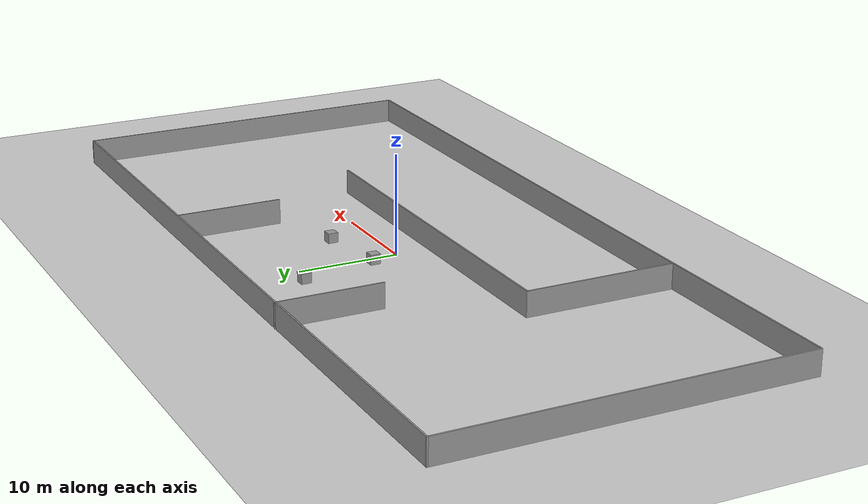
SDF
<sdf version="1.7">
 <world name="default">
  <light name="sun" type="directional">
   <pose>0 0 10 0 -0 0</pose>
   <diffuse>0.8 0.8 0.8 1</diffuse>
   <specular>0.2 0.2 0.2 1</specular>
   <attenuation>
    <range>1000</range>
    <constant>0.9</constant>
    <linear>0.01</linear>
    <quadratic>0.001</quadratic>
   </attenuation>
   <direction>-0.5 0.1 -0.9</direction>
   <spot><inner_angle>0</inner_angle><outer_angle>0</outer_angle><falloff>0</falloff></spot>
  </light>
  <model name="ground_plane">
   <static>1</static>
   <link name="link">
    <collision name="collision">
     <geometry><plane><normal>0 0 1</normal><size>100 100</size></plane></geometry>
     <surface>
      <contact><collide_bitmask>65535</collide_bitmask></contact>
      <friction><ode><mu>100</mu><mu2>50</mu2></ode></friction>
     </surface>
    </collision>
    <visual name="visual">
     <cast_shadows>0</cast_shadows>
     <geometry><plane><normal>0 0 1</normal><size>100 100</size></plane></geometry>
     <material>
      <script><uri>file://media/materials/scripts/gazebo.material</uri><name>Gazebo/Grey</name></script>
     </material>
    </visual>
   </link>
  </model>
  <gravity>0 0 -9.8</gravity>
  <magnetic_field>6e-06 2.3e-05 -4.2e-05</magnetic_field>
  <atmosphere type="adiabatic"/>
  <physics type="ode">
   <max_step_size>0.001</max_step_size>
   <real_time_factor>1</real_time_factor>
   <real_time_update_rate>1000</real_time_update_rate>
  </physics>
  <scene><ambient>0.4 0.4 0.4 1</ambient><background>0.7 0.7 0.7 1</background><shadows>1</shadows></scene>
  <spherical_coordinates>
   <surface_model>EARTH_WGS84</surface_model>
   <latitude_deg>0</latitude_deg>
   <longitude_deg>0</longitude_deg>
   <elevation>0</elevation>
   <heading_deg>0</heading_deg>
  </spherical_coordinates>
  <model name="room2">
   <pose>0.05988 -0.741475 0 0 -0 0</pose>
   <link name="Wall_0">
    <collision name="Wall_0_Collision">
     <geometry><box><size>35.75 0.15 2.5</size></box></geometry>
     <pose>0 0 1.25 0 -0 0</pose>
    </collision>
    <visual name="Wall_0_Visual">
     <pose>0 0 1.25 0 -0 0</pose>
     <geometry><box><size>35.75 0.15 2.5</size></box></geometry>
     <material>
      <script><uri>file://media/materials/scripts/gazebo.material</uri><name>Gazebo/Grey</name></script>
      <ambient>1 1 1 1</ambient>
     </material>
     <meta><layer>0</layer></meta>
    </visual>
    <pose>-39.8 -0.046787 0 0 -0 -1.5708</pose>
   </link>
   <link name="Wall_1">
    <collision name="Wall_1_Collision">
     <geometry><box><size>21.25 0.15 2.5</size></box></geometry>
     <pose>0 0 1.25 0 -0 0</pose>
    </collision>
    <visual name="Wall_1_Visual">
     <pose>0 0 1.25 0 -0 0</pose>
     <geometry><box><size>21.25 0.15 2.5</size></box></geometry>
     <material>
      <script><uri>file://media/materials/scripts/gazebo.material</uri><name>Gazebo/Grey</name></script>
      <ambient>1 1 1 1</ambient>
     </material>
     <meta><layer>0</layer></meta>
    </visual>
    <pose>-29.25 -17.8468 0 0 -0 0</pose>
   </link>
   <link name="Wall_11">
    <collision name="Wall_11_Collision">
     <geometry><box><size>10.5 0.15 2.5</size></box></geometry>
     <pose>0 0 1.25 0 -0 0</pose>
    </collision>
    <visual name="Wall_11_Visual">
     <pose>0 0 1.25 0 -0 0</pose>
     <geometry><box><size>10.5 0.15 2.5</size></box></geometry>
     <material>
      <script><uri>file://media/materials/scripts/gazebo.material</uri><name>Gazebo/Grey</name></script>
      <ambient>1 1 1 1</ambient>
     </material>
     <meta><layer>0</layer></meta>
    </visual>
    <pose>13.0706 12.3911 0 0 -0 -1.5708</pose>
   </link>
   <link name="Wall_2">
    <collision name="Wall_2_Collision">
     <geometry><box><size>15.25 0.15 2.5</size></box></geometry>
     <pose>0 0 1.25 0 -0 0</pose>
    </collision>
    <visual name="Wall_2_Visual">
     <pose>0 0 1.25 0 -0 0</pose>
     <geometry><box><size>15.25 0.15 2.5</size></box></geometry>
     <material>
      <script><uri>file://media/materials/scripts/gazebo.material</uri><name>Gazebo/Grey</name></script>
      <ambient>1 1 1 1</ambient>
     </material>
     <meta><layer>0</layer></meta>
    </visual>
    <pose>-18.7 -10.2968 0 0 -0 1.5708</pose>
   </link>
   <link name="Wall_3">
    <collision name="Wall_3_Collision">
     <geometry><box><size>37.25 0.15 2.5</size></box></geometry>
     <pose>0 0 1.25 0 -0 0</pose>
    </collision>
    <visual name="Wall_3_Visual">
     <pose>0 0 1.25 0 -0 0</pose>
     <geometry><box><size>37.25 0.15 2.5</size></box></geometry>
     <material>
      <script><uri>file://media/materials/scripts/gazebo.material</uri><name>Gazebo/Grey</name></script>
      <ambient>1 1 1 1</ambient>
     </material>
     <meta><layer>0</layer></meta>
    </visual>
    <pose>-0.15 -2.74679 0 0 -0 0</pose>
   </link>
   <link name="Wall_5">
    <collision name="Wall_5_Collision">
     <geometry><box><size>79.75 0.15 2.5</size></box></geometry>
     <pose>0 0 1.25 0 -0 0</pose>
    </collision>
    <visual name="Wall_5_Visual">
     <pose>0 0 1.25 0 -0 0</pose>
     <geometry><box><size>79.75 0.15 2.5</size></box></geometry>
     <material>
      <script><uri>file://media/materials/scripts/gazebo.material</uri><name>Gazebo/Grey</name></script>
      <ambient>1 1 1 1</ambient>
     </material>
     <meta><layer>0</layer></meta>
    </visual>
    <pose>0 17.7532 0 0 -0 0</pose>
   </link>
   <link name="Wall_6">
    <collision name="Wall_6_Collision">
     <geometry><box><size>35.75 0.15 2.5</size></box></geometry>
     <pose>0 0 1.25 0 -0 0</pose>
    </collision>
    <visual name="Wall_6_Visual">
     <pose>0 0 1.25 0 -0 0</pose>
     <geometry><box><size>35.75 0.15 2.5</size></box></geometry>
     <material>
      <script><uri>file://media/materials/scripts/gazebo.material</uri><name>Gazebo/Grey</name></script>
      <ambient>1 1 1 1</ambient>
     </material>
     <meta><layer>0</layer></meta>
    </visual>
    <pose>39.8 -0.046787 0 0 -0 -1.5708</pose>
   </link>
   <link name="Wall_7">
    <collision name="Wall_7_Collision">
     <geometry><box><size>58.65 0.15 2.5</size></box></geometry>
     <pose>0 0 1.25 0 -0 0</pose>
    </collision>
    <visual name="Wall_7_Visual">
     <pose>0 0 1.25 0 -0 0</pose>
     <geometry><box><size>58.65 0.15 2.5</size></box></geometry>
     <material>
      <script><uri>file://media/materials/scripts/gazebo.material</uri><name>Gazebo/Grey</name></script>
      <ambient>1 1 1 1</ambient>
     </material>
     <meta><layer>0</layer></meta>
    </visual>
    <pose>10.55 -17.8468 0 0 -0 3.14159</pose>
   </link>
   <link name="Wall_9">
    <collision name="Wall_9_Collision">
     <geometry><box><size>10.5 0.15 2.5</size></box></geometry>
     <pose>0 0 1.25 0 -0 0</pose>
    </collision>
    <visual name="Wall_9_Visual">
     <pose>0 0 1.25 0 -0 0</pose>
     <geometry><box><size>10.5 0.15 2.5</size></box></geometry>
     <material>
      <script><uri>file://media/materials/scripts/gazebo.material</uri><name>Gazebo/Grey</name></script>
      <ambient>1 1 1 1</ambient>
     </material>
     <meta><layer>0</layer></meta>
    </visual>
    <pose>-11.3528 12.6718 0 0 -0 -1.5708</pose>
   </link>
   <static>1</static>
  </model>
  <model name="unit_box">
   <pose>6.13506 3.98418 0.499995 0 1e-05 0</pose>
   <link name="link">
    <inertial>
     <mass>1</mass>
     <inertia>
      <ixx>0.166667</ixx>
      <ixy>0</ixy>
      <ixz>0</ixz>
      <iyy>0.166667</iyy>
      <iyz>0</iyz>
      <izz>0.166667</izz>
     </inertia>
    </inertial>
    <collision name="collision"><geometry><box><size>1 1 1</size></box></geometry></collision>
    <visual name="visual">
     <geometry><box><size>1 1 1</size></box></geometry>
     <material>
      <script><name>Gazebo/Grey</name><uri>file://media/materials/scripts/gazebo.material</uri></script>
     </material>
    </visual>
   </link>
  </model>
  <model name="unit_box_0">
   <pose>-0.859678 2.79732 0.499995 -1e-05 -0 0</pose>
   <link name="link">
    <inertial>
     <mass>1</mass>
     <inertia>
      <ixx>0.166667</ixx>
      <ixy>0</ixy>
      <ixz>0</ixz>
      <iyy>0.166667</iyy>
      <iyz>0</iyz>
      <izz>0.166667</izz>
     </inertia>
    </inertial>
    <collision name="collision"><geometry><box><size>1 1 1</size></box></geometry></collision>
    <visual name="visual">
     <geometry><box><size>1 1 1</size></box></geometry>
     <material>
      <script><name>Gazebo/Grey</name><uri>file://media/materials/scripts/gazebo.material</uri></script>
     </material>
    </visual>
   </link>
  </model>
  <model name="unit_box_1">
   <pose>-2.41086 10.5088 0.5 0 -0 0</pose>
   <link name="link">
    <inertial>
     <mass>1</mass>
     <inertia>
      <ixx>0.166667</ixx>
      <ixy>0</ixy>
      <ixz>0</ixz>
      <iyy>0.166667</iyy>
      <iyz>0</iyz>
      <izz>0.166667</izz>
     </inertia>
    </inertial>
    <collision name="collision"><geometry><box><size>1 1 1</size></box></geometry></collision>
    <visual name="visual">
     <geometry><box><size>1 1 1</size></box></geometry>
     <material>
      <script><name>Gazebo/Grey</name><uri>file://media/materials/scripts/gazebo.material</uri></script>
     </material>
    </visual>
   </link>
  </model>
 </world>
</sdf>
